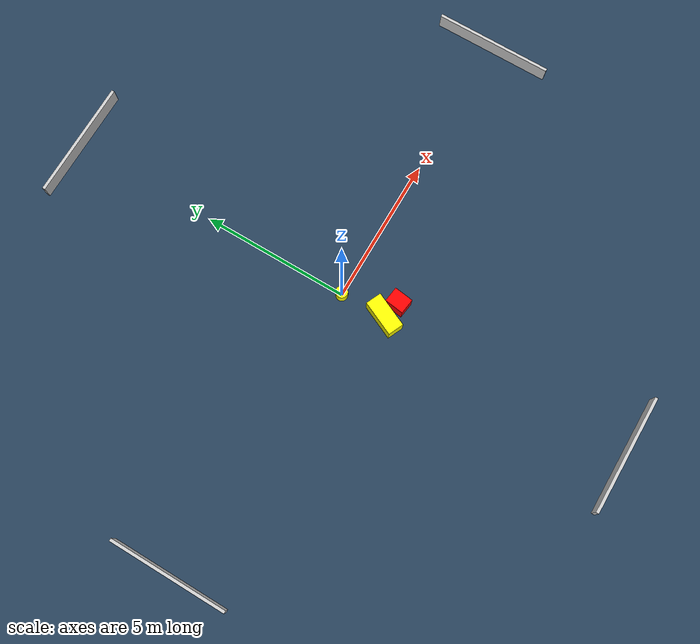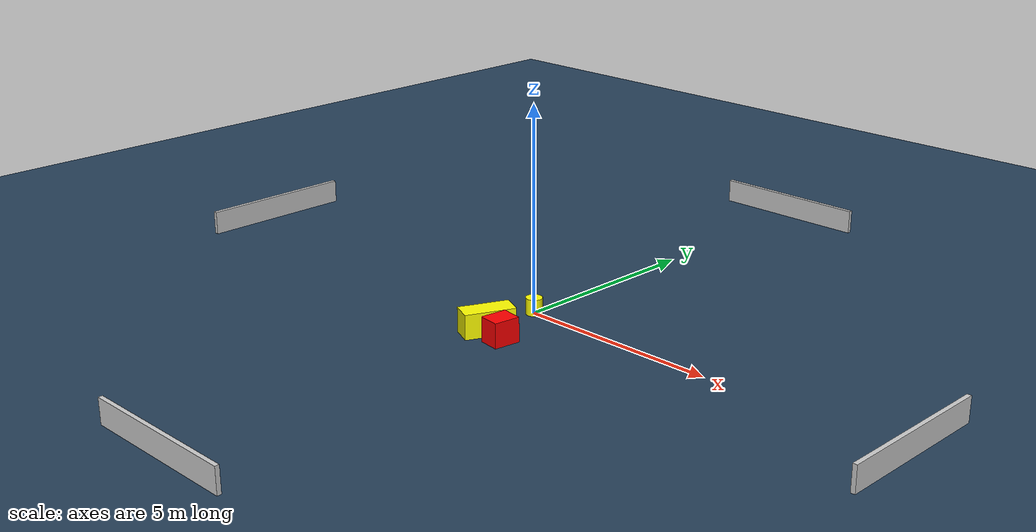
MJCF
<?xml version="1.0" ?>
<mujoco model="generated_environment">
  <option timestep="0.01" integrator="RK4" cone="elliptic"/>
  <default>
    <geom density="1"/>
  </default>
  <asset>
    <texture builtin="gradient" height="3072" name="skybox" rgb1="0.3 0.5 0.7" rgb2="0 0 0" type="skybox" width="512"/>
    <texture builtin="checker" height="300" name="groundplane" rgb1="0.2 0.3 0.4" rgb2="0.1 0.2 0.3" type="2d" width="300"/>
    <material name="groundplane" reflectance="0.2" texrepeat="5 5" texture="groundplane"/>
  </asset>
  <worldbody>
    <light dir="0 0 -1" directional="true" pos="0 0 1.5"/>
    <geom condim="3" friction="0.5 0.005 0.001" material="groundplane" name="floor" pos="0 0 0" size="0 0 0.05" type="plane"/>
    <body name="walls">
      <geom name="wall_1" condim="4" pos="-10.0 0.0 0.3" rgba="0.800000011920929 0.800000011920929 0.800000011920929 1.0" size="0.05 2.0 0.3" type="box"/>
      <geom name="wall_2" condim="4" pos="10.0 0.0 0.3" rgba="0.800000011920929 0.800000011920929 0.800000011920929 1.0" size="0.05 2.0 0.3" type="box"/>
      <geom name="wall_3" condim="4" pos="0.0 -10.0 0.3" rgba="0.800000011920929 0.800000011920929 0.800000011920929 1.0" size="2.0 0.05 0.3" type="box"/>
      <geom name="wall_4" condim="4" pos="0.0 10.0 0.3" rgba="0.800000011920929 0.800000011920929 0.800000011920929 1.0" size="2.0 0.05 0.3" type="box"/>
    </body>
    <body name="robot">
      <joint name="joint_x" type="slide" pos="0 0 0" axis="1 0 0"/>
      <joint name="joint_y" type="slide" pos="0 0 0" axis="0 1 0"/>
      <geom name="robot" type="cylinder" pos="0.0 0.0 0.2" size="0.2 0.2 0.0" mass="5.0" friction="1.0 0.005 0.0001" condim="4" rgba="1.0 1.0 0.0 1.0"/>
    </body>
    <body name="obstacle_1_movable">
      <geom name="obstacle_1_movable" condim="4" pos="0.0327331094094321 -1.5371711592309056 0.3" euler="0 0 335.5262741939351" friction="0.0 0.005 0.001" rgba="1.0 1.0 0.0 1.0" size="0.26947021024424317 0.6107759774190584 0.3" type="box" mass="0.1"/>
      <joint type="free"/>
    </body>
    <body name="obstacle_2_static">
      <geom name="obstacle_2_static" condim="4" pos="0.6364513632253798 -1.704218098858649 0.3" euler="0 0 262.3097174814864" friction="0.0 0.005 0.001" rgba="1.0 0.0 0.0 1.0" size="0.3243869353361151 0.26072743104339907 0.3" type="box"/>
    </body>
  </worldbody>
  <actuator>
    <motor name="actuator_x" joint="joint_x" gear="1" ctrlrange="-1 1"/>
    <motor name="actuator_y" joint="joint_y" gear="1" ctrlrange="-1 1"/>
  </actuator>
</mujoco>
